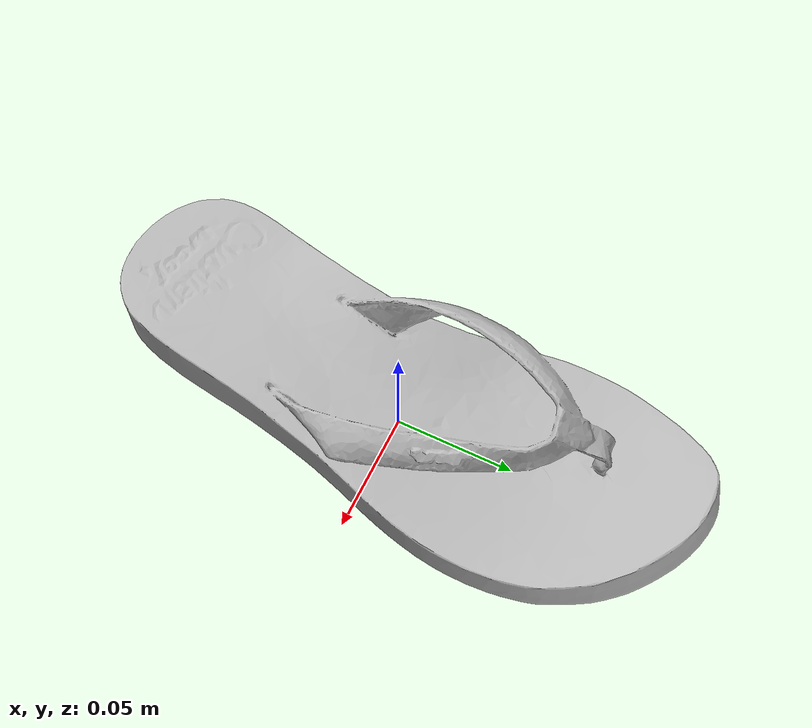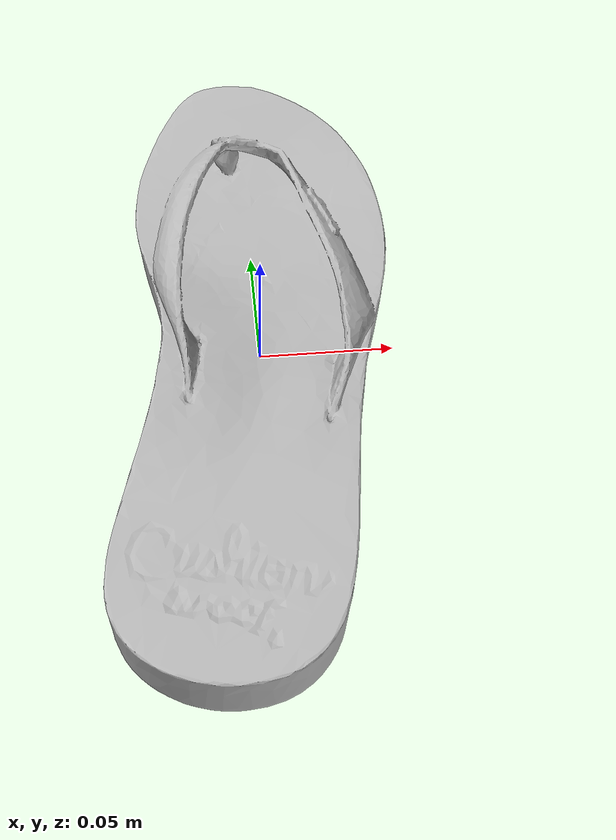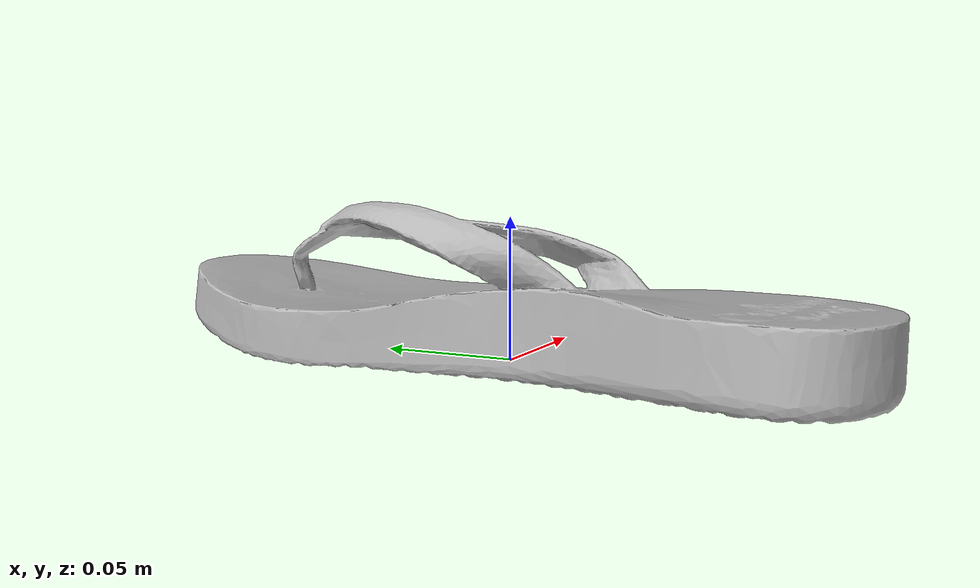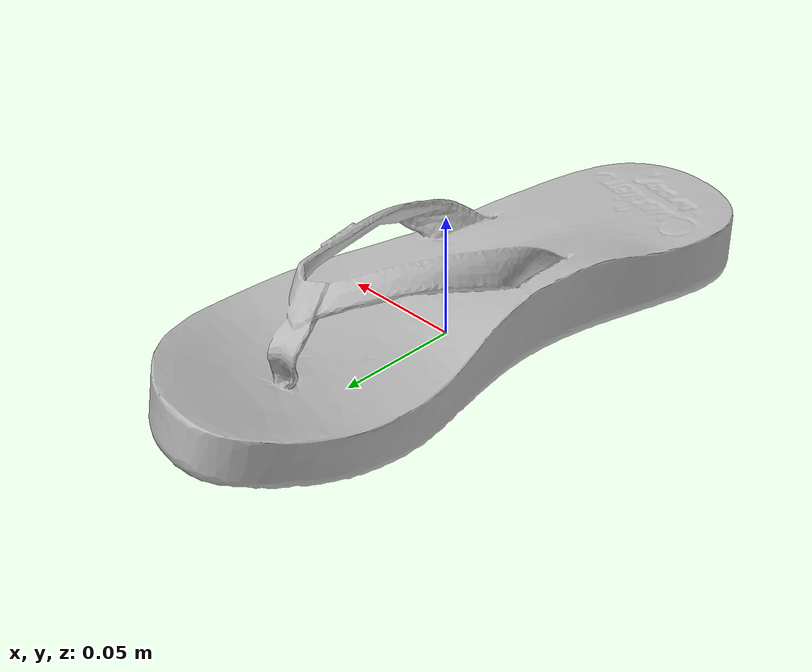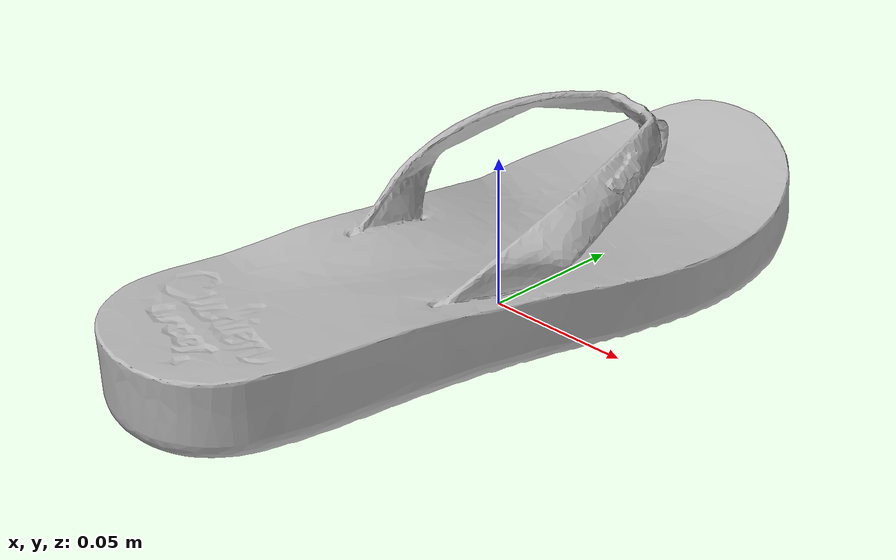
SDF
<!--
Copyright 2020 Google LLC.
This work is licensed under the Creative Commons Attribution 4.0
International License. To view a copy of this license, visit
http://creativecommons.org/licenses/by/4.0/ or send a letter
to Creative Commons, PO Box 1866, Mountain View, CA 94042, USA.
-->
<?xml version="1.0" ?>
<sdf version="1.6">
  <model name="Reef_Star_Cushion_Flipflops_Size_8_Black">
    <link name="link_0">
      <visual name="visual">
        <geometry>
          <mesh>
            <uri>meshes/model.obj</uri>
          </mesh>
        </geometry>
      </visual>
      <collision name="collision_0">
        <geometry>
          <mesh>
            <uri>meshes/model.obj</uri>
          </mesh>
        </geometry>
      </collision>
    </link>
  </model>
</sdf>
